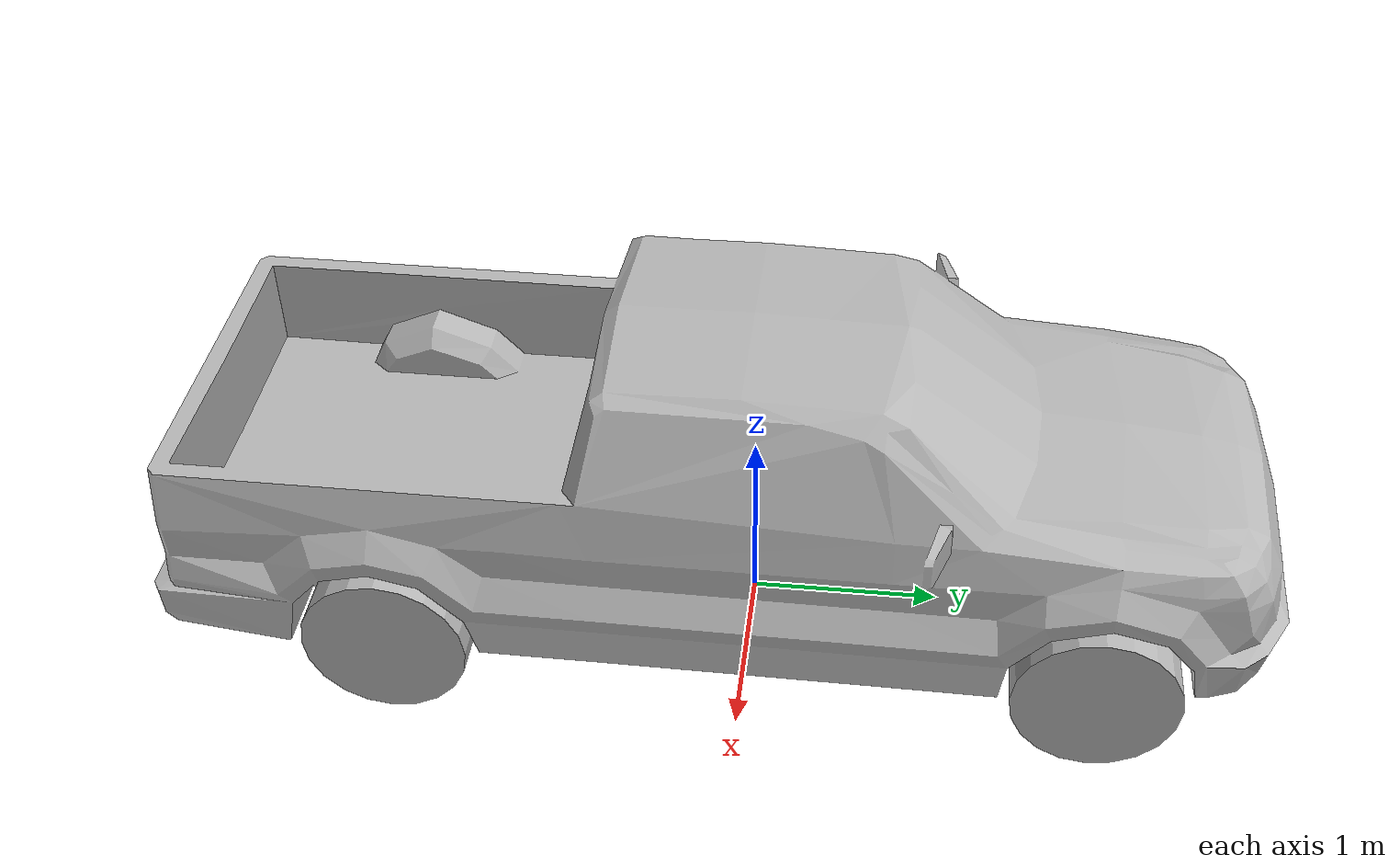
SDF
<?xml version="1.0" ?>
<sdf version="1.6">
  <model name="pickup">
    <static>true</static>
    <link name="link">
      <collision name="collision">
        <geometry>
          <mesh>
            <uri>model://pickup/meshes/pickup.dae</uri>
          </mesh>
        </geometry>
      </collision>
      <visual name="visual">
        <geometry>
          <mesh>
            <uri>model://pickup/meshes/pickup.dae</uri>
          </mesh>
        </geometry>
      </visual>
    </link>
  </model>
</sdf>
